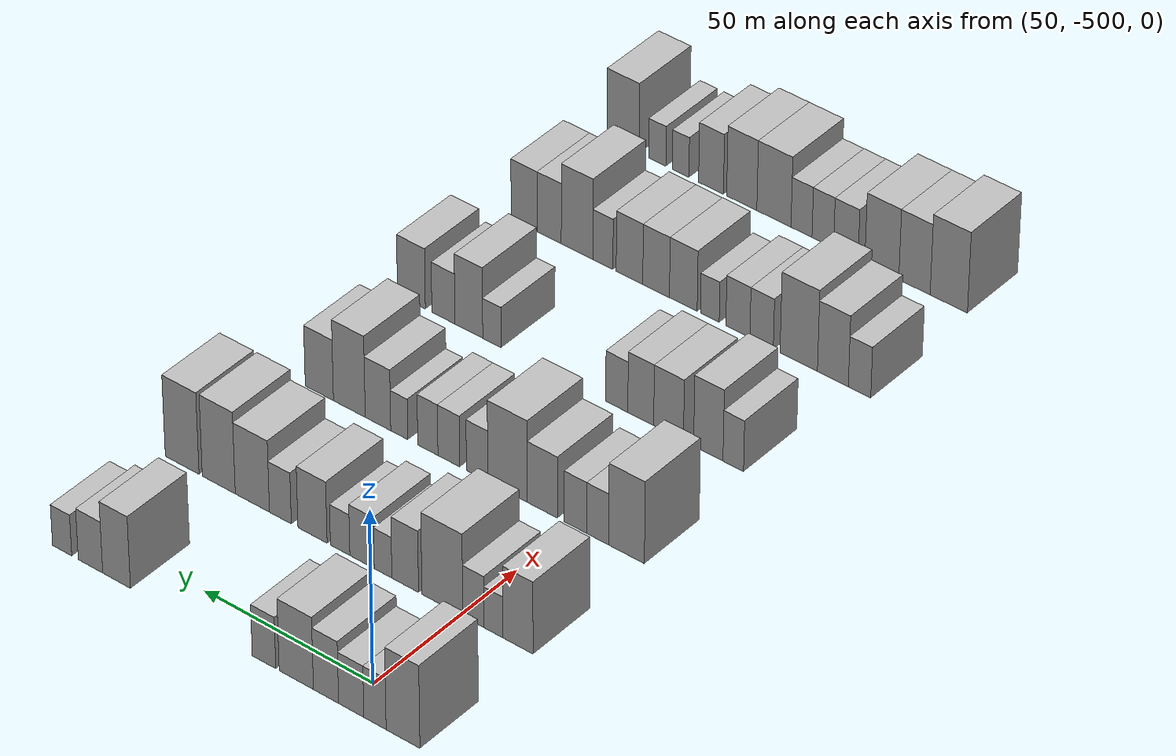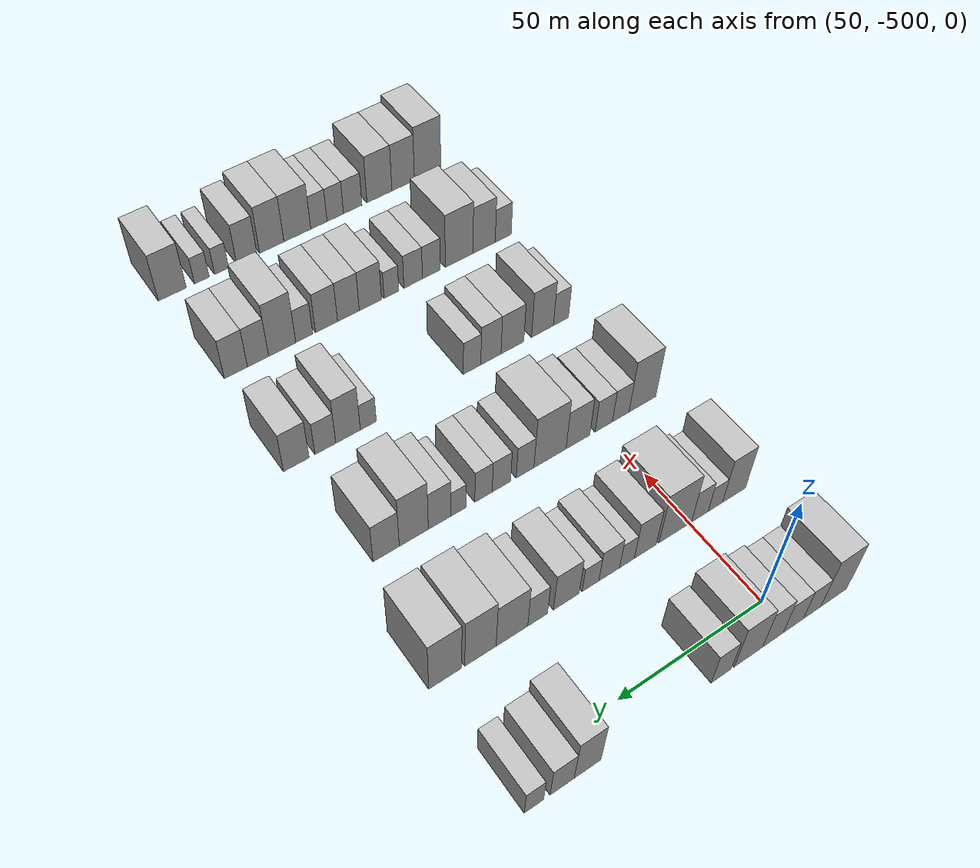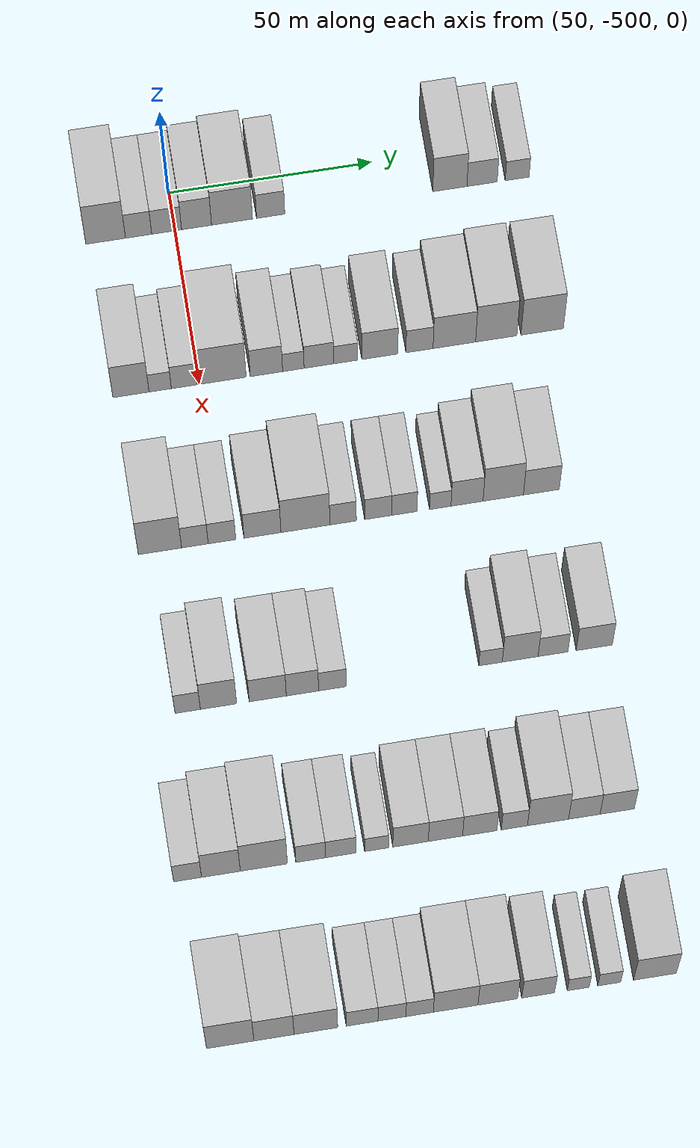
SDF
<sdf version="1.6">
 <world name="default">
  <model name="building_13">
   <static>1</static>
   <pose>50.0000 -516.9730 0 0.000000 0.000000 0.000000</pose>
   <link name="link">
    <pose>0 0 12.00 0 0 0</pose>
    <collision name="collision"><geometry><box><size>20.0000 9.7076 24.0000</size></box></geometry></collision>
    <visual name="visual">
     <cast_shadows>0</cast_shadows>
     <geometry><box><size>20.0000 9.7076 24.0000</size></box></geometry>
     <material>
      <script>
       <uri>model://HANNAS_wall/materials/scripts</uri>
       <uri>model://HANNAS_wall/materials/textures</uri>
       <name>vrc/HANNAS_wall</name>
      </script>
     </material>
    </visual>
   </link>
  </model>
  <model name="building_14">
   <static>1</static>
   <pose>50.0000 -508.9044 0 0.000000 0.000000 0.000000</pose>
   <link name="link">
    <pose>0 0 7.50 0 0 0</pose>
    <collision name="collision"><geometry><box><size>20.0000 6.4295 15.0000</size></box></geometry></collision>
    <visual name="visual">
     <cast_shadows>0</cast_shadows>
     <geometry><box><size>20.0000 6.4295 15.0000</size></box></geometry>
     <material>
      <script>
       <uri>model://HANNAS_wall/materials/scripts</uri>
       <uri>model://HANNAS_wall/materials/textures</uri>
       <name>vrc/HANNAS_wall</name>
      </script>
     </material>
    </visual>
   </link>
  </model>
  <model name="building_15">
   <static>1</static>
   <pose>50.0000 -502.0287 0 0.000000 0.000000 0.000000</pose>
   <link name="link">
    <pose>0 0 7.50 0 0 0</pose>
    <collision name="collision"><geometry><box><size>20.0000 7.3219 15.0000</size></box></geometry></collision>
    <visual name="visual">
     <cast_shadows>0</cast_shadows>
     <geometry><box><size>20.0000 7.3219 15.0000</size></box></geometry>
     <material>
      <script>
       <uri>model://HANNAS_wall/materials/scripts</uri>
       <uri>model://HANNAS_wall/materials/textures</uri>
       <name>vrc/HANNAS_wall</name>
      </script>
     </material>
    </visual>
   </link>
  </model>
  <model name="building_16">
   <static>1</static>
   <pose>50.0000 -494.6923 0 0.000000 0.000000 0.000000</pose>
   <link name="link">
    <pose>0 0 9.00 0 0 0</pose>
    <collision name="collision"><geometry><box><size>20.0000 7.3508 18.0000</size></box></geometry></collision>
    <visual name="visual">
     <cast_shadows>0</cast_shadows>
     <geometry><box><size>20.0000 7.3508 18.0000</size></box></geometry>
     <material>
      <script>
       <uri>model://HANNAS_wall/materials/scripts</uri>
       <uri>model://HANNAS_wall/materials/textures</uri>
       <name>vrc/HANNAS_wall</name>
      </script>
     </material>
    </visual>
   </link>
  </model>
  <model name="building_17">
   <static>1</static>
   <pose>50.0000 -485.9924 0 0.000000 0.000000 0.000000</pose>
   <link name="link">
    <pose>0 0 10.50 0 0 0</pose>
    <collision name="collision"><geometry><box><size>20.0000 10.0489 21.0000</size></box></geometry></collision>
    <visual name="visual">
     <cast_shadows>0</cast_shadows>
     <geometry><box><size>20.0000 10.0489 21.0000</size></box></geometry>
     <material>
      <script>
       <uri>model://HANNAS_wall/materials/scripts</uri>
       <uri>model://HANNAS_wall/materials/textures</uri>
       <name>vrc/HANNAS_wall</name>
      </script>
     </material>
    </visual>
   </link>
  </model>
  <model name="building_18">
   <static>1</static>
   <pose>50.0000 -476.5046 0 0.000000 0.000000 0.000000</pose>
   <link name="link">
    <pose>0 0 7.50 0 0 0</pose>
    <collision name="collision"><geometry><box><size>20.0000 6.9269 15.0000</size></box></geometry></collision>
    <visual name="visual">
     <cast_shadows>0</cast_shadows>
     <geometry><box><size>20.0000 6.9269 15.0000</size></box></geometry>
     <material>
      <script>
       <uri>model://HANNAS_wall/materials/scripts</uri>
       <uri>model://HANNAS_wall/materials/textures</uri>
       <name>vrc/HANNAS_wall</name>
      </script>
     </material>
    </visual>
   </link>
  </model>
  <model name="building_19">
   <static>1</static>
   <pose>50.0000 -432.3915 0 0.000000 0.000000 0.000000</pose>
   <link name="link">
    <pose>0 0 10.50 0 0 0</pose>
    <collision name="collision"><geometry><box><size>20.0000 8.4331 21.0000</size></box></geometry></collision>
    <visual name="visual">
     <cast_shadows>0</cast_shadows>
     <geometry><box><size>20.0000 8.4331 21.0000</size></box></geometry>
     <material>
      <script>
       <uri>model://HANNAS_wall/materials/scripts</uri>
       <uri>model://HANNAS_wall/materials/textures</uri>
       <name>vrc/HANNAS_wall</name>
      </script>
     </material>
    </visual>
   </link>
  </model>
  <model name="building_20">
   <static>1</static>
   <pose>50.0000 -424.4492 0 0.000000 0.000000 0.000000</pose>
   <link name="link">
    <pose>0 0 7.50 0 0 0</pose>
    <collision name="collision"><geometry><box><size>20.0000 7.4514 15.0000</size></box></geometry></collision>
    <visual name="visual">
     <cast_shadows>0</cast_shadows>
     <geometry><box><size>20.0000 7.4514 15.0000</size></box></geometry>
     <material>
      <script>
       <uri>model://HANNAS_wall/materials/scripts</uri>
       <uri>model://HANNAS_wall/materials/textures</uri>
       <name>vrc/HANNAS_wall</name>
      </script>
     </material>
    </visual>
   </link>
  </model>
  <model name="building_21">
   <static>1</static>
   <pose>50.0000 -415.7872 0 0.000000 0.000000 0.000000</pose>
   <link name="link">
    <pose>0 0 6.00 0 0 0</pose>
    <collision name="collision"><geometry><box><size>20.0000 5.8726 12.0000</size></box></geometry></collision>
    <visual name="visual">
     <cast_shadows>0</cast_shadows>
     <geometry><box><size>20.0000 5.8726 12.0000</size></box></geometry>
     <material>
      <script>
       <uri>model://HANNAS_wall/materials/scripts</uri>
       <uri>model://HANNAS_wall/materials/textures</uri>
       <name>vrc/HANNAS_wall</name>
      </script>
     </material>
    </visual>
   </link>
  </model>
  <model name="building_141">
   <static>1</static>
   <pose>90.0000 -516.6569 0 0.000000 0.000000 0.000000</pose>
   <link name="link">
    <pose>0 0 10.50 0 0 0</pose>
    <collision name="collision"><geometry><box><size>20.0000 8.7579 21.0000</size></box></geometry></collision>
    <visual name="visual">
     <cast_shadows>0</cast_shadows>
     <geometry><box><size>20.0000 8.7579 21.0000</size></box></geometry>
     <material>
      <script>
       <uri>model://HANNAS_wall/materials/scripts</uri>
       <uri>model://HANNAS_wall/materials/textures</uri>
       <name>vrc/HANNAS_wall</name>
      </script>
     </material>
    </visual>
   </link>
  </model>
  <model name="building_142">
   <static>1</static>
   <pose>90.0000 -509.5703 0 0.000000 0.000000 0.000000</pose>
   <link name="link">
    <pose>0 0 6.00 0 0 0</pose>
    <collision name="collision"><geometry><box><size>20.0000 5.4151 12.0000</size></box></geometry></collision>
    <visual name="visual">
     <cast_shadows>0</cast_shadows>
     <geometry><box><size>20.0000 5.4151 12.0000</size></box></geometry>
     <material>
      <script>
       <uri>model://HANNAS_wall/materials/scripts</uri>
       <uri>model://HANNAS_wall/materials/textures</uri>
       <name>vrc/HANNAS_wall</name>
      </script>
     </material>
    </visual>
   </link>
  </model>
  <model name="building_143">
   <static>1</static>
   <pose>90.0000 -503.7669 0 0.000000 0.000000 0.000000</pose>
   <link name="link">
    <pose>0 0 7.50 0 0 0</pose>
    <collision name="collision"><geometry><box><size>20.0000 6.1917 15.0000</size></box></geometry></collision>
    <visual name="visual">
     <cast_shadows>0</cast_shadows>
     <geometry><box><size>20.0000 6.1917 15.0000</size></box></geometry>
     <material>
      <script>
       <uri>model://HANNAS_wall/materials/scripts</uri>
       <uri>model://HANNAS_wall/materials/textures</uri>
       <name>vrc/HANNAS_wall</name>
      </script>
     </material>
    </visual>
   </link>
  </model>
  <model name="building_144">
   <static>1</static>
   <pose>90.0000 -494.6932 0 0.000000 0.000000 0.000000</pose>
   <link name="link">
    <pose>0 0 12.00 0 0 0</pose>
    <collision name="collision"><geometry><box><size>20.0000 11.9558 24.0000</size></box></geometry></collision>
    <visual name="visual">
     <cast_shadows>0</cast_shadows>
     <geometry><box><size>20.0000 11.9558 24.0000</size></box></geometry>
     <material>
      <script>
       <uri>model://HANNAS_wall/materials/scripts</uri>
       <uri>model://HANNAS_wall/materials/textures</uri>
       <name>vrc/HANNAS_wall</name>
      </script>
     </material>
    </visual>
   </link>
  </model>
  <model name="building_145">
   <static>1</static>
   <pose>90.0000 -483.7821 0 0.000000 0.000000 0.000000</pose>
   <link name="link">
    <pose>0 0 9.00 0 0 0</pose>
    <collision name="collision"><geometry><box><size>20.0000 7.8665 18.0000</size></box></geometry></collision>
    <visual name="visual">
     <cast_shadows>0</cast_shadows>
     <geometry><box><size>20.0000 7.8665 18.0000</size></box></geometry>
     <material>
      <script>
       <uri>model://HANNAS_wall/materials/scripts</uri>
       <uri>model://HANNAS_wall/materials/textures</uri>
       <name>vrc/HANNAS_wall</name>
      </script>
     </material>
    </visual>
   </link>
  </model>
  <model name="building_146">
   <static>1</static>
   <pose>90.0000 -477.2336 0 0.000000 0.000000 0.000000</pose>
   <link name="link">
    <pose>0 0 6.00 0 0 0</pose>
    <collision name="collision"><geometry><box><size>20.0000 5.2304 12.0000</size></box></geometry></collision>
    <visual name="visual">
     <cast_shadows>0</cast_shadows>
     <geometry><box><size>20.0000 5.2304 12.0000</size></box></geometry>
     <material>
      <script>
       <uri>model://HANNAS_wall/materials/scripts</uri>
       <uri>model://HANNAS_wall/materials/textures</uri>
       <name>vrc/HANNAS_wall</name>
      </script>
     </material>
    </visual>
   </link>
  </model>
  <model name="building_147">
   <static>1</static>
   <pose>90.0000 -470.9978 0 0.000000 0.000000 0.000000</pose>
   <link name="link">
    <pose>0 0 7.50 0 0 0</pose>
    <collision name="collision"><geometry><box><size>20.0000 7.2412 15.0000</size></box></geometry></collision>
    <visual name="visual">
     <cast_shadows>0</cast_shadows>
     <geometry><box><size>20.0000 7.2412 15.0000</size></box></geometry>
     <material>
      <script>
       <uri>model://HANNAS_wall/materials/scripts</uri>
       <uri>model://HANNAS_wall/materials/textures</uri>
       <name>vrc/HANNAS_wall</name>
      </script>
     </material>
    </visual>
   </link>
  </model>
  <model name="building_148">
   <static>1</static>
   <pose>90.0000 -464.4772 0 0.000000 0.000000 0.000000</pose>
   <link name="link">
    <pose>0 0 6.00 0 0 0</pose>
    <collision name="collision"><geometry><box><size>20.0000 5.8000 12.0000</size></box></geometry></collision>
    <visual name="visual">
     <cast_shadows>0</cast_shadows>
     <geometry><box><size>20.0000 5.8000 12.0000</size></box></geometry>
     <material>
      <script>
       <uri>model://HANNAS_wall/materials/scripts</uri>
       <uri>model://HANNAS_wall/materials/textures</uri>
       <name>vrc/HANNAS_wall</name>
      </script>
     </material>
    </visual>
   </link>
  </model>
  <model name="building_149">
   <static>1</static>
   <pose>90.0000 -456.1960 0 0.000000 0.000000 0.000000</pose>
   <link name="link">
    <pose>0 0 9.00 0 0 0</pose>
    <collision name="collision"><geometry><box><size>20.0000 8.7625 18.0000</size></box></geometry></collision>
    <visual name="visual">
     <cast_shadows>0</cast_shadows>
     <geometry><box><size>20.0000 8.7625 18.0000</size></box></geometry>
     <material>
      <script>
       <uri>model://HANNAS_wall/materials/scripts</uri>
       <uri>model://HANNAS_wall/materials/textures</uri>
       <name>vrc/HANNAS_wall</name>
      </script>
     </material>
    </visual>
   </link>
  </model>
  <model name="building_150">
   <static>1</static>
   <pose>90.0000 -446.5175 0 0.000000 0.000000 0.000000</pose>
   <link name="link">
    <pose>0 0 7.50 0 0 0</pose>
    <collision name="collision"><geometry><box><size>20.0000 6.5944 15.0000</size></box></geometry></collision>
    <visual name="visual">
     <cast_shadows>0</cast_shadows>
     <geometry><box><size>20.0000 6.5944 15.0000</size></box></geometry>
     <material>
      <script>
       <uri>model://HANNAS_wall/materials/scripts</uri>
       <uri>model://HANNAS_wall/materials/textures</uri>
       <name>vrc/HANNAS_wall</name>
      </script>
     </material>
    </visual>
   </link>
  </model>
  <model name="building_151">
   <static>1</static>
   <pose>90.0000 -438.0259 0 0.000000 0.000000 0.000000</pose>
   <link name="link">
    <pose>0 0 10.50 0 0 0</pose>
    <collision name="collision"><geometry><box><size>20.0000 10.3888 21.0000</size></box></geometry></collision>
    <visual name="visual">
     <cast_shadows>0</cast_shadows>
     <geometry><box><size>20.0000 10.3888 21.0000</size></box></geometry>
     <material>
      <script>
       <uri>model://HANNAS_wall/materials/scripts</uri>
       <uri>model://HANNAS_wall/materials/textures</uri>
       <name>vrc/HANNAS_wall</name>
      </script>
     </material>
    </visual>
   </link>
  </model>
  <model name="building_152">
   <static>1</static>
   <pose>90.0000 -427.7953 0 0.000000 0.000000 0.000000</pose>
   <link name="link">
    <pose>0 0 12.00 0 0 0</pose>
    <collision name="collision"><geometry><box><size>20.0000 10.0724 24.0000</size></box></geometry></collision>
    <visual name="visual">
     <cast_shadows>0</cast_shadows>
     <geometry><box><size>20.0000 10.0724 24.0000</size></box></geometry>
     <material>
      <script>
       <uri>model://HANNAS_wall/materials/scripts</uri>
       <uri>model://HANNAS_wall/materials/textures</uri>
       <name>vrc/HANNAS_wall</name>
      </script>
     </material>
    </visual>
   </link>
  </model>
  <model name="building_153">
   <static>1</static>
   <pose>90.0000 -416.5771 0 0.000000 0.000000 0.000000</pose>
   <link name="link">
    <pose>0 0 12.00 0 0 0</pose>
    <collision name="collision"><geometry><box><size>20.0000 10.3640 24.0000</size></box></geometry></collision>
    <visual name="visual">
     <cast_shadows>0</cast_shadows>
     <geometry><box><size>20.0000 10.3640 24.0000</size></box></geometry>
     <material>
      <script>
       <uri>model://HANNAS_wall/materials/scripts</uri>
       <uri>model://HANNAS_wall/materials/textures</uri>
       <name>vrc/HANNAS_wall</name>
      </script>
     </material>
    </visual>
   </link>
  </model>
  <model name="building_280">
   <static>1</static>
   <pose>130.0000 -515.5815 0 0.000000 0.000000 0.000000</pose>
   <link name="link">
    <pose>0 0 12.00 0 0 0</pose>
    <collision name="collision"><geometry><box><size>20.0000 10.3733 24.0000</size></box></geometry></collision>
    <visual name="visual">
     <cast_shadows>0</cast_shadows>
     <geometry><box><size>20.0000 10.3733 24.0000</size></box></geometry>
     <material>
      <script>
       <uri>model://HANNAS_wall/materials/scripts</uri>
       <uri>model://HANNAS_wall/materials/textures</uri>
       <name>vrc/HANNAS_wall</name>
      </script>
     </material>
    </visual>
   </link>
  </model>
  <model name="building_281">
   <static>1</static>
   <pose>130.0000 -507.2020 0 0.000000 0.000000 0.000000</pose>
   <link name="link">
    <pose>0 0 7.50 0 0 0</pose>
    <collision name="collision"><geometry><box><size>20.0000 6.3857 15.0000</size></box></geometry></collision>
    <visual name="visual">
     <cast_shadows>0</cast_shadows>
     <geometry><box><size>20.0000 6.3857 15.0000</size></box></geometry>
     <material>
      <script>
       <uri>model://HANNAS_wall/materials/scripts</uri>
       <uri>model://HANNAS_wall/materials/textures</uri>
       <name>vrc/HANNAS_wall</name>
      </script>
     </material>
    </visual>
   </link>
  </model>
  <model name="building_282">
   <static>1</static>
   <pose>130.0000 -500.7031 0 0.000000 0.000000 0.000000</pose>
   <link name="link">
    <pose>0 0 7.50 0 0 0</pose>
    <collision name="collision"><geometry><box><size>20.0000 6.6122 15.0000</size></box></geometry></collision>
    <visual name="visual">
     <cast_shadows>0</cast_shadows>
     <geometry><box><size>20.0000 6.6122 15.0000</size></box></geometry>
     <material>
      <script>
       <uri>model://HANNAS_wall/materials/scripts</uri>
       <uri>model://HANNAS_wall/materials/textures</uri>
       <name>vrc/HANNAS_wall</name>
      </script>
     </material>
    </visual>
   </link>
  </model>
  <model name="building_283">
   <static>1</static>
   <pose>130.0000 -490.9674 0 0.000000 0.000000 0.000000</pose>
   <link name="link">
    <pose>0 0 9.00 0 0 0</pose>
    <collision name="collision"><geometry><box><size>20.0000 8.8591 18.0000</size></box></geometry></collision>
    <visual name="visual">
     <cast_shadows>0</cast_shadows>
     <geometry><box><size>20.0000 8.8591 18.0000</size></box></geometry>
     <material>
      <script>
       <uri>model://HANNAS_wall/materials/scripts</uri>
       <uri>model://HANNAS_wall/materials/textures</uri>
       <name>vrc/HANNAS_wall</name>
      </script>
     </material>
    </visual>
   </link>
  </model>
  <model name="building_284">
   <static>1</static>
   <pose>130.0000 -480.6535 0 0.000000 0.000000 0.000000</pose>
   <link name="link">
    <pose>0 0 12.00 0 0 0</pose>
    <collision name="collision"><geometry><box><size>20.0000 11.7686 24.0000</size></box></geometry></collision>
    <visual name="visual">
     <cast_shadows>0</cast_shadows>
     <geometry><box><size>20.0000 11.7686 24.0000</size></box></geometry>
     <material>
      <script>
       <uri>model://HANNAS_wall/materials/scripts</uri>
       <uri>model://HANNAS_wall/materials/textures</uri>
       <name>vrc/HANNAS_wall</name>
      </script>
     </material>
    </visual>
   </link>
  </model>
  <model name="building_285">
   <static>1</static>
   <pose>130.0000 -471.5792 0 0.000000 0.000000 0.000000</pose>
   <link name="link">
    <pose>0 0 7.50 0 0 0</pose>
    <collision name="collision"><geometry><box><size>20.0000 6.3801 15.0000</size></box></geometry></collision>
    <visual name="visual">
     <cast_shadows>0</cast_shadows>
     <geometry><box><size>20.0000 6.3801 15.0000</size></box></geometry>
     <material>
      <script>
       <uri>model://HANNAS_wall/materials/scripts</uri>
       <uri>model://HANNAS_wall/materials/textures</uri>
       <name>vrc/HANNAS_wall</name>
      </script>
     </material>
    </visual>
   </link>
  </model>
  <model name="building_286">
   <static>1</static>
   <pose>130.0000 -463.1178 0 0.000000 0.000000 0.000000</pose>
   <link name="link">
    <pose>0 0 7.50 0 0 0</pose>
    <collision name="collision"><geometry><box><size>20.0000 6.5428 15.0000</size></box></geometry></collision>
    <visual name="visual">
     <cast_shadows>0</cast_shadows>
     <geometry><box><size>20.0000 6.5428 15.0000</size></box></geometry>
     <material>
      <script>
       <uri>model://HANNAS_wall/materials/scripts</uri>
       <uri>model://HANNAS_wall/materials/textures</uri>
       <name>vrc/HANNAS_wall</name>
      </script>
     </material>
    </visual>
   </link>
  </model>
  <model name="building_287">
   <static>1</static>
   <pose>130.0000 -456.8044 0 0.000000 0.000000 0.000000</pose>
   <link name="link">
    <pose>0 0 7.50 0 0 0</pose>
    <collision name="collision"><geometry><box><size>20.0000 6.0840 15.0000</size></box></geometry></collision>
    <visual name="visual">
     <cast_shadows>0</cast_shadows>
     <geometry><box><size>20.0000 6.0840 15.0000</size></box></geometry>
     <material>
      <script>
       <uri>model://HANNAS_wall/materials/scripts</uri>
       <uri>model://HANNAS_wall/materials/textures</uri>
       <name>vrc/HANNAS_wall</name>
      </script>
     </material>
    </visual>
   </link>
  </model>
  <model name="building_288">
   <static>1</static>
   <pose>130.0000 -448.1727 0 0.000000 0.000000 0.000000</pose>
   <link name="link">
    <pose>0 0 6.00 0 0 0</pose>
    <collision name="collision"><geometry><box><size>20.0000 5.1793 12.0000</size></box></geometry></collision>
    <visual name="visual">
     <cast_shadows>0</cast_shadows>
     <geometry><box><size>20.0000 5.1793 12.0000</size></box></geometry>
     <material>
      <script>
       <uri>model://HANNAS_wall/materials/scripts</uri>
       <uri>model://HANNAS_wall/materials/textures</uri>
       <name>vrc/HANNAS_wall</name>
      </script>
     </material>
    </visual>
   </link>
  </model>
  <model name="building_289">
   <static>1</static>
   <pose>130.0000 -441.7065 0 0.000000 0.000000 0.000000</pose>
   <link name="link">
    <pose>0 0 9.00 0 0 0</pose>
    <collision name="collision"><geometry><box><size>20.0000 7.7532 18.0000</size></box></geometry></collision>
    <visual name="visual">
     <cast_shadows>0</cast_shadows>
     <geometry><box><size>20.0000 7.7532 18.0000</size></box></geometry>
     <material>
      <script>
       <uri>model://HANNAS_wall/materials/scripts</uri>
       <uri>model://HANNAS_wall/materials/textures</uri>
       <name>vrc/HANNAS_wall</name>
      </script>
     </material>
    </visual>
   </link>
  </model>
  <model name="building_290">
   <static>1</static>
   <pose>130.0000 -432.9608 0 0.000000 0.000000 0.000000</pose>
   <link name="link">
    <pose>0 0 12.00 0 0 0</pose>
    <collision name="collision"><geometry><box><size>20.0000 9.7382 24.0000</size></box></geometry></collision>
    <visual name="visual">
     <cast_shadows>0</cast_shadows>
     <geometry><box><size>20.0000 9.7382 24.0000</size></box></geometry>
     <material>
      <script>
       <uri>model://HANNAS_wall/materials/scripts</uri>
       <uri>model://HANNAS_wall/materials/textures</uri>
       <name>vrc/HANNAS_wall</name>
      </script>
     </material>
    </visual>
   </link>
  </model>
  <model name="building_291">
   <static>1</static>
   <pose>130.0000 -423.7574 0 0.000000 0.000000 0.000000</pose>
   <link name="link">
    <pose>0 0 9.00 0 0 0</pose>
    <collision name="collision"><geometry><box><size>20.0000 8.6684 18.0000</size></box></geometry></collision>
    <visual name="visual">
     <cast_shadows>0</cast_shadows>
     <geometry><box><size>20.0000 8.6684 18.0000</size></box></geometry>
     <material>
      <script>
       <uri>model://HANNAS_wall/materials/scripts</uri>
       <uri>model://HANNAS_wall/materials/textures</uri>
       <name>vrc/HANNAS_wall</name>
      </script>
     </material>
    </visual>
   </link>
  </model>
  <model name="building_419">
   <static>1</static>
   <pose>170.0000 -514.9538 0 0.000000 0.000000 0.000000</pose>
   <link name="link">
    <pose>0 0 7.50 0 0 0</pose>
    <collision name="collision"><geometry><box><size>20.0000 6.0105 15.0000</size></box></geometry></collision>
    <visual name="visual">
     <cast_shadows>0</cast_shadows>
     <geometry><box><size>20.0000 6.0105 15.0000</size></box></geometry>
     <material>
      <script>
       <uri>model://HANNAS_wall/materials/scripts</uri>
       <uri>model://HANNAS_wall/materials/textures</uri>
       <name>vrc/HANNAS_wall</name>
      </script>
     </material>
    </visual>
   </link>
  </model>
  <model name="building_420">
   <static>1</static>
   <pose>170.0000 -507.6445 0 0.000000 0.000000 0.000000</pose>
   <link name="link">
    <pose>0 0 10.50 0 0 0</pose>
    <collision name="collision"><geometry><box><size>20.0000 8.6080 21.0000</size></box></geometry></collision>
    <visual name="visual">
     <cast_shadows>0</cast_shadows>
     <geometry><box><size>20.0000 8.6080 21.0000</size></box></geometry>
     <material>
      <script>
       <uri>model://HANNAS_wall/materials/scripts</uri>
       <uri>model://HANNAS_wall/materials/textures</uri>
       <name>vrc/HANNAS_wall</name>
      </script>
     </material>
    </visual>
   </link>
  </model>
  <model name="building_421">
   <static>1</static>
   <pose>170.0000 -495.9404 0 0.000000 0.000000 0.000000</pose>
   <link name="link">
    <pose>0 0 9.00 0 0 0</pose>
    <collision name="collision"><geometry><box><size>20.0000 8.8001 18.0000</size></box></geometry></collision>
    <visual name="visual">
     <cast_shadows>0</cast_shadows>
     <geometry><box><size>20.0000 8.8001 18.0000</size></box></geometry>
     <material>
      <script>
       <uri>model://HANNAS_wall/materials/scripts</uri>
       <uri>model://HANNAS_wall/materials/textures</uri>
       <name>vrc/HANNAS_wall</name>
      </script>
     </material>
    </visual>
   </link>
  </model>
  <model name="building_422">
   <static>1</static>
   <pose>170.0000 -487.6946 0 0.000000 0.000000 0.000000</pose>
   <link name="link">
    <pose>0 0 9.00 0 0 0</pose>
    <collision name="collision"><geometry><box><size>20.0000 7.6916 18.0000</size></box></geometry></collision>
    <visual name="visual">
     <cast_shadows>0</cast_shadows>
     <geometry><box><size>20.0000 7.6916 18.0000</size></box></geometry>
     <material>
      <script>
       <uri>model://HANNAS_wall/materials/scripts</uri>
       <uri>model://HANNAS_wall/materials/textures</uri>
       <name>vrc/HANNAS_wall</name>
      </script>
     </material>
    </visual>
   </link>
  </model>
  <model name="building_423">
   <static>1</static>
   <pose>170.0000 -480.5596 0 0.000000 0.000000 0.000000</pose>
   <link name="link">
    <pose>0 0 7.50 0 0 0</pose>
    <collision name="collision"><geometry><box><size>20.0000 6.5785 15.0000</size></box></geometry></collision>
    <visual name="visual">
     <cast_shadows>0</cast_shadows>
     <geometry><box><size>20.0000 6.5785 15.0000</size></box></geometry>
     <material>
      <script>
       <uri>model://HANNAS_wall/materials/scripts</uri>
       <uri>model://HANNAS_wall/materials/textures</uri>
       <name>vrc/HANNAS_wall</name>
      </script>
     </material>
    </visual>
   </link>
  </model>
  <model name="building_424">
   <static>1</static>
   <pose>170.0000 -442.8534 0 0.000000 0.000000 0.000000</pose>
   <link name="link">
    <pose>0 0 6.00 0 0 0</pose>
    <collision name="collision"><geometry><box><size>20.0000 5.6113 12.0000</size></box></geometry></collision>
    <visual name="visual">
     <cast_shadows>0</cast_shadows>
     <geometry><box><size>20.0000 5.6113 12.0000</size></box></geometry>
     <material>
      <script>
       <uri>model://HANNAS_wall/materials/scripts</uri>
       <uri>model://HANNAS_wall/materials/textures</uri>
       <name>vrc/HANNAS_wall</name>
      </script>
     </material>
    </visual>
   </link>
  </model>
  <model name="building_425">
   <static>1</static>
   <pose>170.0000 -435.7730 0 0.000000 0.000000 0.000000</pose>
   <link name="link">
    <pose>0 0 10.50 0 0 0</pose>
    <collision name="collision"><geometry><box><size>20.0000 8.5497 21.0000</size></box></geometry></collision>
    <visual name="visual">
     <cast_shadows>0</cast_shadows>
     <geometry><box><size>20.0000 8.5497 21.0000</size></box></geometry>
     <material>
      <script>
       <uri>model://HANNAS_wall/materials/scripts</uri>
       <uri>model://HANNAS_wall/materials/textures</uri>
       <name>vrc/HANNAS_wall</name>
      </script>
     </material>
    </visual>
   </link>
  </model>
  <model name="building_426">
   <static>1</static>
   <pose>170.0000 -427.9406 0 0.000000 0.000000 0.000000</pose>
   <link name="link">
    <pose>0 0 7.50 0 0 0</pose>
    <collision name="collision"><geometry><box><size>20.0000 7.1151 15.0000</size></box></geometry></collision>
    <visual name="visual">
     <cast_shadows>0</cast_shadows>
     <geometry><box><size>20.0000 7.1151 15.0000</size></box></geometry>
     <material>
      <script>
       <uri>model://HANNAS_wall/materials/scripts</uri>
       <uri>model://HANNAS_wall/materials/textures</uri>
       <name>vrc/HANNAS_wall</name>
      </script>
     </material>
    </visual>
   </link>
  </model>
  <model name="building_427">
   <static>1</static>
   <pose>170.0000 -418.0641 0 0.000000 0.000000 0.000000</pose>
   <link name="link">
    <pose>0 0 9.00 0 0 0</pose>
    <collision name="collision"><geometry><box><size>20.0000 8.6379 18.0000</size></box></geometry></collision>
    <visual name="visual">
     <cast_shadows>0</cast_shadows>
     <geometry><box><size>20.0000 8.6379 18.0000</size></box></geometry>
     <material>
      <script>
       <uri>model://HANNAS_wall/materials/scripts</uri>
       <uri>model://HANNAS_wall/materials/textures</uri>
       <name>vrc/HANNAS_wall</name>
      </script>
     </material>
    </visual>
   </link>
  </model>
  <model name="building_551">
   <static>1</static>
   <pose>210.0000 -521.0045 0 0.000000 0.000000 0.000000</pose>
   <link name="link">
    <pose>0 0 7.50 0 0 0</pose>
    <collision name="collision"><geometry><box><size>20.0000 6.5599 15.0000</size></box></geometry></collision>
    <visual name="visual">
     <cast_shadows>0</cast_shadows>
     <geometry><box><size>20.0000 6.5599 15.0000</size></box></geometry>
     <material>
      <script>
       <uri>model://HANNAS_wall/materials/scripts</uri>
       <uri>model://HANNAS_wall/materials/textures</uri>
       <name>vrc/HANNAS_wall</name>
      </script>
     </material>
    </visual>
   </link>
  </model>
  <model name="building_552">
   <static>1</static>
   <pose>210.0000 -513.1792 0 0.000000 0.000000 0.000000</pose>
   <link name="link">
    <pose>0 0 10.50 0 0 0</pose>
    <collision name="collision"><geometry><box><size>20.0000 9.0906 21.0000</size></box></geometry></collision>
    <visual name="visual">
     <cast_shadows>0</cast_shadows>
     <geometry><box><size>20.0000 9.0906 21.0000</size></box></geometry>
     <material>
      <script>
       <uri>model://HANNAS_wall/materials/scripts</uri>
       <uri>model://HANNAS_wall/materials/textures</uri>
       <name>vrc/HANNAS_wall</name>
      </script>
     </material>
    </visual>
   </link>
  </model>
  <model name="building_553">
   <static>1</static>
   <pose>210.0000 -503.1026 0 0.000000 0.000000 0.000000</pose>
   <link name="link">
    <pose>0 0 12.00 0 0 0</pose>
    <collision name="collision"><geometry><box><size>20.0000 11.0627 24.0000</size></box></geometry></collision>
    <visual name="visual">
     <cast_shadows>0</cast_shadows>
     <geometry><box><size>20.0000 11.0627 24.0000</size></box></geometry>
     <material>
      <script>
       <uri>model://HANNAS_wall/materials/scripts</uri>
       <uri>model://HANNAS_wall/materials/textures</uri>
       <name>vrc/HANNAS_wall</name>
      </script>
     </material>
    </visual>
   </link>
  </model>
  <model name="building_554">
   <static>1</static>
   <pose>210.0000 -492.0844 0 0.000000 0.000000 0.000000</pose>
   <link name="link">
    <pose>0 0 7.50 0 0 0</pose>
    <collision name="collision"><geometry><box><size>20.0000 6.9735 15.0000</size></box></geometry></collision>
    <visual name="visual">
     <cast_shadows>0</cast_shadows>
     <geometry><box><size>20.0000 6.9735 15.0000</size></box></geometry>
     <material>
      <script>
       <uri>model://HANNAS_wall/materials/scripts</uri>
       <uri>model://HANNAS_wall/materials/textures</uri>
       <name>vrc/HANNAS_wall</name>
      </script>
     </material>
    </visual>
   </link>
  </model>
  <model name="building_555">
   <static>1</static>
   <pose>210.0000 -484.9995 0 0.000000 0.000000 0.000000</pose>
   <link name="link">
    <pose>0 0 7.50 0 0 0</pose>
    <collision name="collision"><geometry><box><size>20.0000 7.1964 15.0000</size></box></geometry></collision>
    <visual name="visual">
     <cast_shadows>0</cast_shadows>
     <geometry><box><size>20.0000 7.1964 15.0000</size></box></geometry>
     <material>
      <script>
       <uri>model://HANNAS_wall/materials/scripts</uri>
       <uri>model://HANNAS_wall/materials/textures</uri>
       <name>vrc/HANNAS_wall</name>
      </script>
     </material>
    </visual>
   </link>
  </model>
  <model name="building_556">
   <static>1</static>
   <pose>210.0000 -476.5784 0 0.000000 0.000000 0.000000</pose>
   <link name="link">
    <pose>0 0 6.00 0 0 0</pose>
    <collision name="collision"><geometry><box><size>20.0000 5.6457 12.0000</size></box></geometry></collision>
    <visual name="visual">
     <cast_shadows>0</cast_shadows>
     <geometry><box><size>20.0000 5.6457 12.0000</size></box></geometry>
     <material>
      <script>
       <uri>model://HANNAS_wall/materials/scripts</uri>
       <uri>model://HANNAS_wall/materials/textures</uri>
       <name>vrc/HANNAS_wall</name>
      </script>
     </material>
    </visual>
   </link>
  </model>
  <model name="building_557">
   <static>1</static>
   <pose>210.0000 -468.5687 0 0.000000 0.000000 0.000000</pose>
   <link name="link">
    <pose>0 0 9.00 0 0 0</pose>
    <collision name="collision"><geometry><box><size>20.0000 8.3737 18.0000</size></box></geometry></collision>
    <visual name="visual">
     <cast_shadows>0</cast_shadows>
     <geometry><box><size>20.0000 8.3737 18.0000</size></box></geometry>
     <material>
      <script>
       <uri>model://HANNAS_wall/materials/scripts</uri>
       <uri>model://HANNAS_wall/materials/textures</uri>
       <name>vrc/HANNAS_wall</name>
      </script>
     </material>
    </visual>
   </link>
  </model>
  <model name="building_558">
   <static>1</static>
   <pose>210.0000 -460.3321 0 0.000000 0.000000 0.000000</pose>
   <link name="link">
    <pose>0 0 9.00 0 0 0</pose>
    <collision name="collision"><geometry><box><size>20.0000 8.0996 18.0000</size></box></geometry></collision>
    <visual name="visual">
     <cast_shadows>0</cast_shadows>
     <geometry><box><size>20.0000 8.0996 18.0000</size></box></geometry>
     <material>
      <script>
       <uri>model://HANNAS_wall/materials/scripts</uri>
       <uri>model://HANNAS_wall/materials/textures</uri>
       <name>vrc/HANNAS_wall</name>
      </script>
     </material>
    </visual>
   </link>
  </model>
  <model name="building_559">
   <static>1</static>
   <pose>210.0000 -452.2263 0 0.000000 0.000000 0.000000</pose>
   <link name="link">
    <pose>0 0 9.00 0 0 0</pose>
    <collision name="collision"><geometry><box><size>20.0000 8.1121 18.0000</size></box></geometry></collision>
    <visual name="visual">
     <cast_shadows>0</cast_shadows>
     <geometry><box><size>20.0000 8.1121 18.0000</size></box></geometry>
     <material>
      <script>
       <uri>model://HANNAS_wall/materials/scripts</uri>
       <uri>model://HANNAS_wall/materials/textures</uri>
       <name>vrc/HANNAS_wall</name>
      </script>
     </material>
    </visual>
   </link>
  </model>
  <model name="building_560">
   <static>1</static>
   <pose>210.0000 -444.0816 0 0.000000 0.000000 0.000000</pose>
   <link name="link">
    <pose>0 0 7.50 0 0 0</pose>
    <collision name="collision"><geometry><box><size>20.0000 6.1772 15.0000</size></box></geometry></collision>
    <visual name="visual">
     <cast_shadows>0</cast_shadows>
     <geometry><box><size>20.0000 6.1772 15.0000</size></box></geometry>
     <material>
      <script>
       <uri>model://HANNAS_wall/materials/scripts</uri>
       <uri>model://HANNAS_wall/materials/textures</uri>
       <name>vrc/HANNAS_wall</name>
      </script>
     </material>
    </visual>
   </link>
  </model>
  <model name="building_561">
   <static>1</static>
   <pose>210.0000 -436.1324 0 0.000000 0.000000 0.000000</pose>
   <link name="link">
    <pose>0 0 12.00 0 0 0</pose>
    <collision name="collision"><geometry><box><size>20.0000 9.7213 24.0000</size></box></geometry></collision>
    <visual name="visual">
     <cast_shadows>0</cast_shadows>
     <geometry><box><size>20.0000 9.7213 24.0000</size></box></geometry>
     <material>
      <script>
       <uri>model://HANNAS_wall/materials/scripts</uri>
       <uri>model://HANNAS_wall/materials/textures</uri>
       <name>vrc/HANNAS_wall</name>
      </script>
     </material>
    </visual>
   </link>
  </model>
  <model name="building_562">
   <static>1</static>
   <pose>210.0000 -427.5307 0 0.000000 0.000000 0.000000</pose>
   <link name="link">
    <pose>0 0 9.00 0 0 0</pose>
    <collision name="collision"><geometry><box><size>20.0000 7.4821 18.0000</size></box></geometry></collision>
    <visual name="visual">
     <cast_shadows>0</cast_shadows>
     <geometry><box><size>20.0000 7.4821 18.0000</size></box></geometry>
     <material>
      <script>
       <uri>model://HANNAS_wall/materials/scripts</uri>
       <uri>model://HANNAS_wall/materials/textures</uri>
       <name>vrc/HANNAS_wall</name>
      </script>
     </material>
    </visual>
   </link>
  </model>
  <model name="building_563">
   <static>1</static>
   <pose>210.0000 -419.7436 0 0.000000 0.000000 0.000000</pose>
   <link name="link">
    <pose>0 0 9.00 0 0 0</pose>
    <collision name="collision"><geometry><box><size>20.0000 8.0922 18.0000</size></box></geometry></collision>
    <visual name="visual">
     <cast_shadows>0</cast_shadows>
     <geometry><box><size>20.0000 8.0922 18.0000</size></box></geometry>
     <material>
      <script>
       <uri>model://HANNAS_wall/materials/scripts</uri>
       <uri>model://HANNAS_wall/materials/textures</uri>
       <name>vrc/HANNAS_wall</name>
      </script>
     </material>
    </visual>
   </link>
  </model>
  <model name="building_687">
   <static>1</static>
   <pose>250.0000 -517.1334 0 0.000000 0.000000 0.000000</pose>
   <link name="link">
    <pose>0 0 12.00 0 0 0</pose>
    <collision name="collision"><geometry><box><size>20.0000 11.0096 24.0000</size></box></geometry></collision>
    <visual name="visual">
     <cast_shadows>0</cast_shadows>
     <geometry><box><size>20.0000 11.0096 24.0000</size></box></geometry>
     <material>
      <script>
       <uri>model://HANNAS_wall/materials/scripts</uri>
       <uri>model://HANNAS_wall/materials/textures</uri>
       <name>vrc/HANNAS_wall</name>
      </script>
     </material>
    </visual>
   </link>
  </model>
  <model name="building_688">
   <static>1</static>
   <pose>250.0000 -506.9741 0 0.000000 0.000000 0.000000</pose>
   <link name="link">
    <pose>0 0 10.50 0 0 0</pose>
    <collision name="collision"><geometry><box><size>20.0000 9.3089 21.0000</size></box></geometry></collision>
    <visual name="visual">
     <cast_shadows>0</cast_shadows>
     <geometry><box><size>20.0000 9.3089 21.0000</size></box></geometry>
     <material>
      <script>
       <uri>model://HANNAS_wall/materials/scripts</uri>
       <uri>model://HANNAS_wall/materials/textures</uri>
       <name>vrc/HANNAS_wall</name>
      </script>
     </material>
    </visual>
   </link>
  </model>
  <model name="building_689">
   <static>1</static>
   <pose>250.0000 -497.2395 0 0.000000 0.000000 0.000000</pose>
   <link name="link">
    <pose>0 0 10.50 0 0 0</pose>
    <collision name="collision"><geometry><box><size>20.0000 10.1604 21.0000</size></box></geometry></collision>
    <visual name="visual">
     <cast_shadows>0</cast_shadows>
     <geometry><box><size>20.0000 10.1604 21.0000</size></box></geometry>
     <material>
      <script>
       <uri>model://HANNAS_wall/materials/scripts</uri>
       <uri>model://HANNAS_wall/materials/textures</uri>
       <name>vrc/HANNAS_wall</name>
      </script>
     </material>
    </visual>
   </link>
  </model>
  <model name="building_690">
   <static>1</static>
   <pose>250.0000 -486.4725 0 0.000000 0.000000 0.000000</pose>
   <link name="link">
    <pose>0 0 7.50 0 0 0</pose>
    <collision name="collision"><geometry><box><size>20.0000 7.3737 15.0000</size></box></geometry></collision>
    <visual name="visual">
     <cast_shadows>0</cast_shadows>
     <geometry><box><size>20.0000 7.3737 15.0000</size></box></geometry>
     <material>
      <script>
       <uri>model://HANNAS_wall/materials/scripts</uri>
       <uri>model://HANNAS_wall/materials/textures</uri>
       <name>vrc/HANNAS_wall</name>
      </script>
     </material>
    </visual>
   </link>
  </model>
  <model name="building_691">
   <static>1</static>
   <pose>250.0000 -479.5234 0 0.000000 0.000000 0.000000</pose>
   <link name="link">
    <pose>0 0 7.50 0 0 0</pose>
    <collision name="collision"><geometry><box><size>20.0000 6.5246 15.0000</size></box></geometry></collision>
    <visual name="visual">
     <cast_shadows>0</cast_shadows>
     <geometry><box><size>20.0000 6.5246 15.0000</size></box></geometry>
     <material>
      <script>
       <uri>model://HANNAS_wall/materials/scripts</uri>
       <uri>model://HANNAS_wall/materials/textures</uri>
       <name>vrc/HANNAS_wall</name>
      </script>
     </material>
    </visual>
   </link>
  </model>
  <model name="building_692">
   <static>1</static>
   <pose>250.0000 -473.0730 0 0.000000 0.000000 0.000000</pose>
   <link name="link">
    <pose>0 0 7.50 0 0 0</pose>
    <collision name="collision"><geometry><box><size>20.0000 6.3762 15.0000</size></box></geometry></collision>
    <visual name="visual">
     <cast_shadows>0</cast_shadows>
     <geometry><box><size>20.0000 6.3762 15.0000</size></box></geometry>
     <material>
      <script>
       <uri>model://HANNAS_wall/materials/scripts</uri>
       <uri>model://HANNAS_wall/materials/textures</uri>
       <name>vrc/HANNAS_wall</name>
      </script>
     </material>
    </visual>
   </link>
  </model>
  <model name="building_693">
   <static>1</static>
   <pose>250.0000 -464.6848 0 0.000000 0.000000 0.000000</pose>
   <link name="link">
    <pose>0 0 10.50 0 0 0</pose>
    <collision name="collision"><geometry><box><size>20.0000 10.4002 21.0000</size></box></geometry></collision>
    <visual name="visual">
     <cast_shadows>0</cast_shadows>
     <geometry><box><size>20.0000 10.4002 21.0000</size></box></geometry>
     <material>
      <script>
       <uri>model://HANNAS_wall/materials/scripts</uri>
       <uri>model://HANNAS_wall/materials/textures</uri>
       <name>vrc/HANNAS_wall</name>
      </script>
     </material>
    </visual>
   </link>
  </model>
  <model name="building_694">
   <static>1</static>
   <pose>250.0000 -454.8646 0 0.000000 0.000000 0.000000</pose>
   <link name="link">
    <pose>0 0 10.50 0 0 0</pose>
    <collision name="collision"><geometry><box><size>20.0000 9.2401 21.0000</size></box></geometry></collision>
    <visual name="visual">
     <cast_shadows>0</cast_shadows>
     <geometry><box><size>20.0000 9.2401 21.0000</size></box></geometry>
     <material>
      <script>
       <uri>model://HANNAS_wall/materials/scripts</uri>
       <uri>model://HANNAS_wall/materials/textures</uri>
       <name>vrc/HANNAS_wall</name>
      </script>
     </material>
    </visual>
   </link>
  </model>
  <model name="building_695">
   <static>1</static>
   <pose>250.0000 -445.4225 0 0.000000 0.000000 0.000000</pose>
   <link name="link">
    <pose>0 0 9.00 0 0 0</pose>
    <collision name="collision"><geometry><box><size>20.0000 7.6442 18.0000</size></box></geometry></collision>
    <visual name="visual">
     <cast_shadows>0</cast_shadows>
     <geometry><box><size>20.0000 7.6442 18.0000</size></box></geometry>
     <material>
      <script>
       <uri>model://HANNAS_wall/materials/scripts</uri>
       <uri>model://HANNAS_wall/materials/textures</uri>
       <name>vrc/HANNAS_wall</name>
      </script>
     </material>
    </visual>
   </link>
  </model>
  <model name="building_696">
   <static>1</static>
   <pose>250.0000 -436.0276 0 0.000000 0.000000 0.000000</pose>
   <link name="link">
    <pose>0 0 6.00 0 0 0</pose>
    <collision name="collision"><geometry><box><size>20.0000 5.1456 12.0000</size></box></geometry></collision>
    <visual name="visual">
     <cast_shadows>0</cast_shadows>
     <geometry><box><size>20.0000 5.1456 12.0000</size></box></geometry>
     <material>
      <script>
       <uri>model://HANNAS_wall/materials/scripts</uri>
       <uri>model://HANNAS_wall/materials/textures</uri>
       <name>vrc/HANNAS_wall</name>
      </script>
     </material>
    </visual>
   </link>
  </model>
  <model name="building_697">
   <static>1</static>
   <pose>250.0000 -428.7806 0 0.000000 0.000000 0.000000</pose>
   <link name="link">
    <pose>0 0 6.00 0 0 0</pose>
    <collision name="collision"><geometry><box><size>20.0000 5.3483 12.0000</size></box></geometry></collision>
    <visual name="visual">
     <cast_shadows>0</cast_shadows>
     <geometry><box><size>20.0000 5.3483 12.0000</size></box></geometry>
     <material>
      <script>
       <uri>model://HANNAS_wall/materials/scripts</uri>
       <uri>model://HANNAS_wall/materials/textures</uri>
       <name>vrc/HANNAS_wall</name>
      </script>
     </material>
    </visual>
   </link>
  </model>
  <model name="building_698">
   <static>1</static>
   <pose>250.0000 -418.0897 0 0.000000 0.000000 0.000000</pose>
   <link name="link">
    <pose>0 0 10.50 0 0 0</pose>
    <collision name="collision"><geometry><box><size>20.0000 10.0336 21.0000</size></box></geometry></collision>
    <visual name="visual">
     <cast_shadows>0</cast_shadows>
     <geometry><box><size>20.0000 10.0336 21.0000</size></box></geometry>
     <material>
      <script>
       <uri>model://HANNAS_wall/materials/scripts</uri>
       <uri>model://HANNAS_wall/materials/textures</uri>
       <name>vrc/HANNAS_wall</name>
      </script>
     </material>
    </visual>
   </link>
  </model>
 </world>
</sdf>
